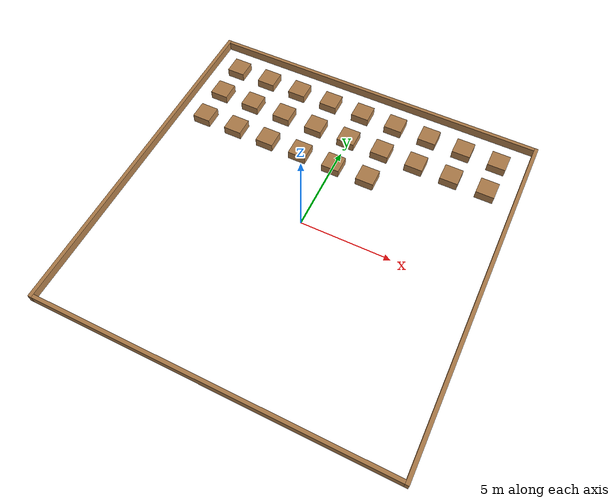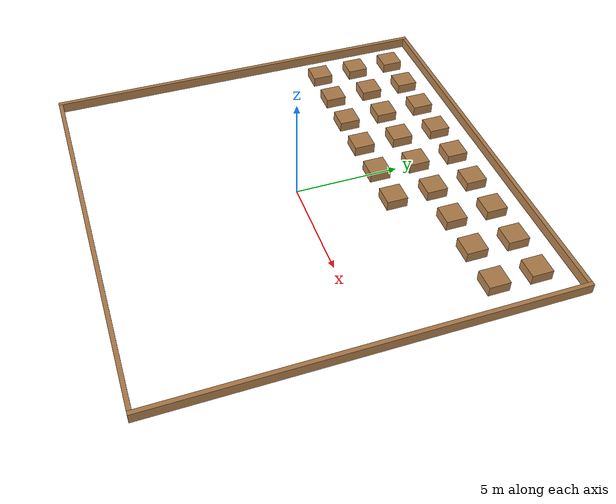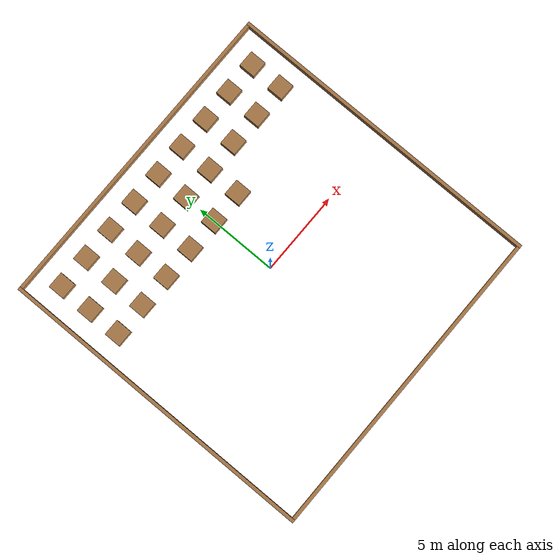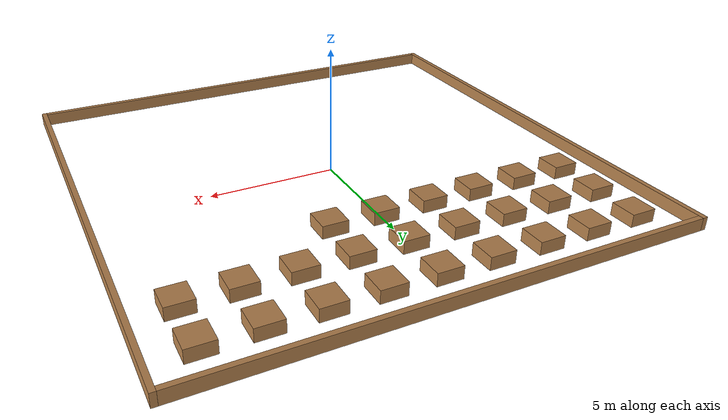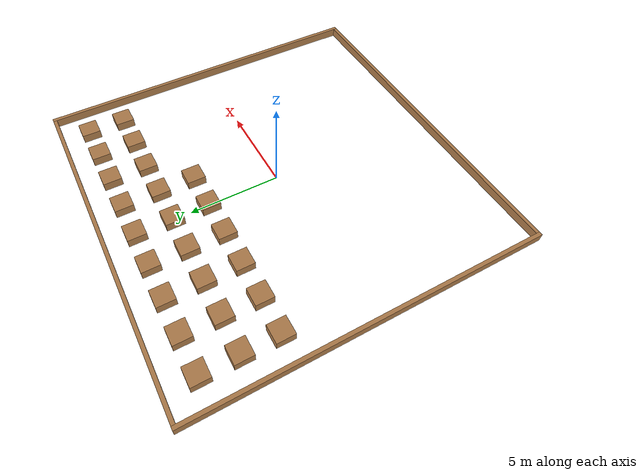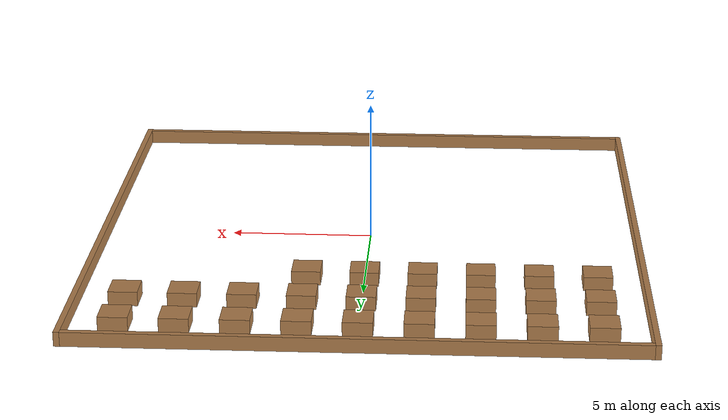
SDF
<sdf version="1.5">
 <model name="clobot_test_map">
  <static>1</static>
  <link name="Wall_EAST">
   <collision name="Wall_EAST_Collision">
    <pose>9.6 0 0.25 0 0 0</pose>
    <geometry><box><size>0.2 19.4 0.5</size></box></geometry>
    <surface>
     <friction>
      <ode><mu>1</mu><mu2>1</mu2><fdir1>0 0 0</fdir1><slip1>0</slip1><slip2>0</slip2></ode>
      <torsional>
       <coefficient>1</coefficient>
       <patch_radius>0</patch_radius>
       <surface_radius>0</surface_radius>
       <use_patch_radius>1</use_patch_radius>
       <ode><slip>0</slip></ode>
      </torsional>
     </friction>
     <bounce><restitution_coefficient>0</restitution_coefficient><threshold>1e+06</threshold></bounce>
     <contact>
      <collide_without_contact>0</collide_without_contact>
      <collide_without_contact_bitmask>1</collide_without_contact_bitmask>
      <collide_bitmask>1</collide_bitmask>
      <ode>
       <soft_cfm>0</soft_cfm>
       <soft_erp>0.2</soft_erp>
       <kp>1e+13</kp>
       <kd>1</kd>
       <max_vel>0.01</max_vel>
       <min_depth>0</min_depth>
      </ode>
      <bullet>
       <split_impulse>1</split_impulse>
       <split_impulse_penetration_threshold>-0.01</split_impulse_penetration_threshold>
       <soft_cfm>0</soft_cfm>
       <soft_erp>0.2</soft_erp>
       <kp>1e+13</kp>
       <kd>1</kd>
      </bullet>
     </contact>
    </surface>
   </collision>
   <visual name="Wall_EAST_Visual">
    <pose>9.6 0 0.25 0 0 0</pose>
    <geometry><box><size>0.2 19.4 0.5</size></box></geometry>
    <material><script><name>Gazebo/WoodFloor</name></script></material>
   </visual>
  </link>
  <link name="Wall_WEST">
   <collision name="Wall_WEST_Collision">
    <pose>-9.6 0 0.25 0 0 0</pose>
    <geometry><box><size>0.2 19.4 0.5</size></box></geometry>
    <surface>
     <friction>
      <ode><mu>1</mu><mu2>1</mu2><fdir1>0 0 0</fdir1><slip1>0</slip1><slip2>0</slip2></ode>
      <torsional>
       <coefficient>1</coefficient>
       <patch_radius>0</patch_radius>
       <surface_radius>0</surface_radius>
       <use_patch_radius>1</use_patch_radius>
       <ode><slip>0</slip></ode>
      </torsional>
     </friction>
     <bounce><restitution_coefficient>0</restitution_coefficient><threshold>1e+06</threshold></bounce>
     <contact>
      <collide_without_contact>0</collide_without_contact>
      <collide_without_contact_bitmask>1</collide_without_contact_bitmask>
      <collide_bitmask>1</collide_bitmask>
      <ode>
       <soft_cfm>0</soft_cfm>
       <soft_erp>0.2</soft_erp>
       <kp>1e+13</kp>
       <kd>1</kd>
       <max_vel>0.01</max_vel>
       <min_depth>0</min_depth>
      </ode>
      <bullet>
       <split_impulse>1</split_impulse>
       <split_impulse_penetration_threshold>-0.01</split_impulse_penetration_threshold>
       <soft_cfm>0</soft_cfm>
       <soft_erp>0.2</soft_erp>
       <kp>1e+13</kp>
       <kd>1</kd>
      </bullet>
     </contact>
    </surface>
   </collision>
   <visual name="Wall_SOUTH_Visual">
    <pose>-9.6 0 0.25 0 0 0</pose>
    <geometry><box><size>0.2 19.4 0.5</size></box></geometry>
    <material><script><name>Gazebo/WoodFloor</name></script></material>
   </visual>
  </link>
  <link name="Wall_SOUTH">
   <collision name="Wall_SOUTH_Collision">
    <pose>0 -9.6 0.25 0 0 0</pose>
    <geometry><box><size>19 0.2 0.5</size></box></geometry>
    <surface>
     <friction>
      <ode><mu>1</mu><mu2>1</mu2><fdir1>0 0 0</fdir1><slip1>0</slip1><slip2>0</slip2></ode>
      <torsional>
       <coefficient>1</coefficient>
       <patch_radius>0</patch_radius>
       <surface_radius>0</surface_radius>
       <use_patch_radius>1</use_patch_radius>
       <ode><slip>0</slip></ode>
      </torsional>
     </friction>
     <bounce><restitution_coefficient>0</restitution_coefficient><threshold>1e+06</threshold></bounce>
     <contact>
      <collide_without_contact>0</collide_without_contact>
      <collide_without_contact_bitmask>1</collide_without_contact_bitmask>
      <collide_bitmask>1</collide_bitmask>
      <ode>
       <soft_cfm>0</soft_cfm>
       <soft_erp>0.2</soft_erp>
       <kp>1e+13</kp>
       <kd>1</kd>
       <max_vel>0.01</max_vel>
       <min_depth>0</min_depth>
      </ode>
      <bullet>
       <split_impulse>1</split_impulse>
       <split_impulse_penetration_threshold>-0.01</split_impulse_penetration_threshold>
       <soft_cfm>0</soft_cfm>
       <soft_erp>0.2</soft_erp>
       <kp>1e+13</kp>
       <kd>1</kd>
      </bullet>
     </contact>
    </surface>
   </collision>
   <visual name="Wall_SOUTH_Visual">
    <pose>0 -9.6 0.25 0 0 0</pose>
    <geometry><box><size>19 0.2 0.5</size></box></geometry>
    <material><script><name>Gazebo/WoodFloor</name></script></material>
   </visual>
  </link>
  <link name="Wall_NORTH">
   <collision name="Wall_NORTH_Collision">
    <pose>0 9.6 0.25 0 0 0</pose>
    <geometry><box><size>19 0.2 0.5</size></box></geometry>
    <surface>
     <friction>
      <ode><mu>1</mu><mu2>1</mu2><fdir1>0 0 0</fdir1><slip1>0</slip1><slip2>0</slip2></ode>
      <torsional>
       <coefficient>1</coefficient>
       <patch_radius>0</patch_radius>
       <surface_radius>0</surface_radius>
       <use_patch_radius>1</use_patch_radius>
       <ode><slip>0</slip></ode>
      </torsional>
     </friction>
     <bounce><restitution_coefficient>0</restitution_coefficient><threshold>1e+06</threshold></bounce>
     <contact>
      <collide_without_contact>0</collide_without_contact>
      <collide_without_contact_bitmask>1</collide_without_contact_bitmask>
      <collide_bitmask>1</collide_bitmask>
      <ode>
       <soft_cfm>0</soft_cfm>
       <soft_erp>0.2</soft_erp>
       <kp>1e+13</kp>
       <kd>1</kd>
       <max_vel>0.01</max_vel>
       <min_depth>0</min_depth>
      </ode>
      <bullet>
       <split_impulse>1</split_impulse>
       <split_impulse_penetration_threshold>-0.01</split_impulse_penetration_threshold>
       <soft_cfm>0</soft_cfm>
       <soft_erp>0.2</soft_erp>
       <kp>1e+13</kp>
       <kd>1</kd>
      </bullet>
     </contact>
    </surface>
   </collision>
   <visual name="Wall_NORTH_Visual">
    <pose>0 9.6 0.25 0 0 0</pose>
    <geometry><box><size>19 0.2 0.5</size></box></geometry>
    <material><script><name>Gazebo/WoodFloor</name></script></material>
   </visual>
  </link>
  <link name="Box1">
   <collision name="Box1_Collision">
    <pose>-8 8 0.25 0 0 0</pose>
    <geometry><box><size>1 1 0.5</size></box></geometry>
    <surface>
     <friction>
      <ode><mu>1</mu><mu2>1</mu2><fdir1>0 0 0</fdir1><slip1>0</slip1><slip2>0</slip2></ode>
      <torsional>
       <coefficient>1</coefficient>
       <patch_radius>0</patch_radius>
       <surface_radius>0</surface_radius>
       <use_patch_radius>1</use_patch_radius>
       <ode><slip>0</slip></ode>
      </torsional>
     </friction>
     <bounce><restitution_coefficient>0</restitution_coefficient><threshold>1e+06</threshold></bounce>
     <contact>
      <collide_without_contact>0</collide_without_contact>
      <collide_without_contact_bitmask>1</collide_without_contact_bitmask>
      <collide_bitmask>1</collide_bitmask>
      <ode>
       <soft_cfm>0</soft_cfm>
       <soft_erp>0.2</soft_erp>
       <kp>1e+13</kp>
       <kd>1</kd>
       <max_vel>0.01</max_vel>
       <min_depth>0</min_depth>
      </ode>
      <bullet>
       <split_impulse>1</split_impulse>
       <split_impulse_penetration_threshold>-0.01</split_impulse_penetration_threshold>
       <soft_cfm>0</soft_cfm>
       <soft_erp>0.2</soft_erp>
       <kp>1e+13</kp>
       <kd>1</kd>
      </bullet>
     </contact>
    </surface>
   </collision>
   <visual name="Box1_Visual">
    <pose>-8 8 0.25 0 0 0</pose>
    <geometry><box><size>1 1 0.5</size></box></geometry>
    <material><script><name>Gazebo/WoodFloor</name></script></material>
   </visual>
  </link>
  <link name="Box2">
   <collision name="Box2_Collision">
    <pose>-6 8 0.25 0 0 0</pose>
    <geometry><box><size>1 1 0.5</size></box></geometry>
    <surface>
     <friction>
      <ode><mu>1</mu><mu2>1</mu2><fdir1>0 0 0</fdir1><slip1>0</slip1><slip2>0</slip2></ode>
      <torsional>
       <coefficient>1</coefficient>
       <patch_radius>0</patch_radius>
       <surface_radius>0</surface_radius>
       <use_patch_radius>1</use_patch_radius>
       <ode><slip>0</slip></ode>
      </torsional>
     </friction>
     <bounce><restitution_coefficient>0</restitution_coefficient><threshold>1e+06</threshold></bounce>
     <contact>
      <collide_without_contact>0</collide_without_contact>
      <collide_without_contact_bitmask>1</collide_without_contact_bitmask>
      <collide_bitmask>1</collide_bitmask>
      <ode>
       <soft_cfm>0</soft_cfm>
       <soft_erp>0.2</soft_erp>
       <kp>1e+13</kp>
       <kd>1</kd>
       <max_vel>0.01</max_vel>
       <min_depth>0</min_depth>
      </ode>
      <bullet>
       <split_impulse>1</split_impulse>
       <split_impulse_penetration_threshold>-0.01</split_impulse_penetration_threshold>
       <soft_cfm>0</soft_cfm>
       <soft_erp>0.2</soft_erp>
       <kp>1e+13</kp>
       <kd>1</kd>
      </bullet>
     </contact>
    </surface>
   </collision>
   <visual name="Box2_Visual">
    <pose>-6 8 0.25 0 0 0</pose>
    <geometry><box><size>1 1 0.5</size></box></geometry>
    <material><script><name>Gazebo/WoodFloor</name></script></material>
   </visual>
  </link>
  <link name="Box3">
   <collision name="Box3_Collision">
    <pose>-4 8 0.25 0 0 0</pose>
    <geometry><box><size>1 1 0.5</size></box></geometry>
    <surface>
     <friction>
      <ode><mu>1</mu><mu2>1</mu2><fdir1>0 0 0</fdir1><slip1>0</slip1><slip2>0</slip2></ode>
      <torsional>
       <coefficient>1</coefficient>
       <patch_radius>0</patch_radius>
       <surface_radius>0</surface_radius>
       <use_patch_radius>1</use_patch_radius>
       <ode><slip>0</slip></ode>
      </torsional>
     </friction>
     <bounce><restitution_coefficient>0</restitution_coefficient><threshold>1e+06</threshold></bounce>
     <contact>
      <collide_without_contact>0</collide_without_contact>
      <collide_without_contact_bitmask>1</collide_without_contact_bitmask>
      <collide_bitmask>1</collide_bitmask>
      <ode>
       <soft_cfm>0</soft_cfm>
       <soft_erp>0.2</soft_erp>
       <kp>1e+13</kp>
       <kd>1</kd>
       <max_vel>0.01</max_vel>
       <min_depth>0</min_depth>
      </ode>
      <bullet>
       <split_impulse>1</split_impulse>
       <split_impulse_penetration_threshold>-0.01</split_impulse_penetration_threshold>
       <soft_cfm>0</soft_cfm>
       <soft_erp>0.2</soft_erp>
       <kp>1e+13</kp>
       <kd>1</kd>
      </bullet>
     </contact>
    </surface>
   </collision>
   <visual name="Box3_Visual">
    <pose>-4 8 0.25 0 0 0</pose>
    <geometry><box><size>1 1 0.5</size></box></geometry>
    <material><script><name>Gazebo/WoodFloor</name></script></material>
   </visual>
  </link>
  <link name="Box4">
   <collision name="Box4_Collision">
    <pose>-2 8 0.25 0 0 0</pose>
    <geometry><box><size>1 1 0.5</size></box></geometry>
    <surface>
     <friction>
      <ode><mu>1</mu><mu2>1</mu2><fdir1>0 0 0</fdir1><slip1>0</slip1><slip2>0</slip2></ode>
      <torsional>
       <coefficient>1</coefficient>
       <patch_radius>0</patch_radius>
       <surface_radius>0</surface_radius>
       <use_patch_radius>1</use_patch_radius>
       <ode><slip>0</slip></ode>
      </torsional>
     </friction>
     <bounce><restitution_coefficient>0</restitution_coefficient><threshold>1e+06</threshold></bounce>
     <contact>
      <collide_without_contact>0</collide_without_contact>
      <collide_without_contact_bitmask>1</collide_without_contact_bitmask>
      <collide_bitmask>1</collide_bitmask>
      <ode>
       <soft_cfm>0</soft_cfm>
       <soft_erp>0.2</soft_erp>
       <kp>1e+13</kp>
       <kd>1</kd>
       <max_vel>0.01</max_vel>
       <min_depth>0</min_depth>
      </ode>
      <bullet>
       <split_impulse>1</split_impulse>
       <split_impulse_penetration_threshold>-0.01</split_impulse_penetration_threshold>
       <soft_cfm>0</soft_cfm>
       <soft_erp>0.2</soft_erp>
       <kp>1e+13</kp>
       <kd>1</kd>
      </bullet>
     </contact>
    </surface>
   </collision>
   <visual name="Box4_Visual">
    <pose>-2 8 0.25 0 0 0</pose>
    <geometry><box><size>1 1 0.5</size></box></geometry>
    <material><script><name>Gazebo/WoodFloor</name></script></material>
   </visual>
  </link>
  <link name="Box5">
   <collision name="Box5_Collision">
    <pose>0 8 0.25 0 0 0</pose>
    <geometry><box><size>1 1 0.5</size></box></geometry>
    <surface>
     <friction>
      <ode><mu>1</mu><mu2>1</mu2><fdir1>0 0 0</fdir1><slip1>0</slip1><slip2>0</slip2></ode>
      <torsional>
       <coefficient>1</coefficient>
       <patch_radius>0</patch_radius>
       <surface_radius>0</surface_radius>
       <use_patch_radius>1</use_patch_radius>
       <ode><slip>0</slip></ode>
      </torsional>
     </friction>
     <bounce><restitution_coefficient>0</restitution_coefficient><threshold>1e+06</threshold></bounce>
     <contact>
      <collide_without_contact>0</collide_without_contact>
      <collide_without_contact_bitmask>1</collide_without_contact_bitmask>
      <collide_bitmask>1</collide_bitmask>
      <ode>
       <soft_cfm>0</soft_cfm>
       <soft_erp>0.2</soft_erp>
       <kp>1e+13</kp>
       <kd>1</kd>
       <max_vel>0.01</max_vel>
       <min_depth>0</min_depth>
      </ode>
      <bullet>
       <split_impulse>1</split_impulse>
       <split_impulse_penetration_threshold>-0.01</split_impulse_penetration_threshold>
       <soft_cfm>0</soft_cfm>
       <soft_erp>0.2</soft_erp>
       <kp>1e+13</kp>
       <kd>1</kd>
      </bullet>
     </contact>
    </surface>
   </collision>
   <visual name="Box5_Visual">
    <pose>0 8 0.25 0 0 0</pose>
    <geometry><box><size>1 1 0.5</size></box></geometry>
    <material><script><name>Gazebo/WoodFloor</name></script></material>
   </visual>
  </link>
  <link name="Box6">
   <collision name="Box6_Collision">
    <pose>2 8 0.25 0 0 0</pose>
    <geometry><box><size>1 1 0.5</size></box></geometry>
    <surface>
     <friction>
      <ode><mu>1</mu><mu2>1</mu2><fdir1>0 0 0</fdir1><slip1>0</slip1><slip2>0</slip2></ode>
      <torsional>
       <coefficient>1</coefficient>
       <patch_radius>0</patch_radius>
       <surface_radius>0</surface_radius>
       <use_patch_radius>1</use_patch_radius>
       <ode><slip>0</slip></ode>
      </torsional>
     </friction>
     <bounce><restitution_coefficient>0</restitution_coefficient><threshold>1e+06</threshold></bounce>
     <contact>
      <collide_without_contact>0</collide_without_contact>
      <collide_without_contact_bitmask>1</collide_without_contact_bitmask>
      <collide_bitmask>1</collide_bitmask>
      <ode>
       <soft_cfm>0</soft_cfm>
       <soft_erp>0.2</soft_erp>
       <kp>1e+13</kp>
       <kd>1</kd>
       <max_vel>0.01</max_vel>
       <min_depth>0</min_depth>
      </ode>
      <bullet>
       <split_impulse>1</split_impulse>
       <split_impulse_penetration_threshold>-0.01</split_impulse_penetration_threshold>
       <soft_cfm>0</soft_cfm>
       <soft_erp>0.2</soft_erp>
       <kp>1e+13</kp>
       <kd>1</kd>
      </bullet>
     </contact>
    </surface>
   </collision>
   <visual name="Box6_Visual">
    <pose>2 8 0.25 0 0 0</pose>
    <geometry><box><size>1 1 0.5</size></box></geometry>
    <material><script><name>Gazebo/WoodFloor</name></script></material>
   </visual>
  </link>
  <link name="Box7">
   <collision name="Box7_Collision">
    <pose>4 8 0.25 0 0 0</pose>
    <geometry><box><size>1 1 0.5</size></box></geometry>
    <surface>
     <friction>
      <ode><mu>1</mu><mu2>1</mu2><fdir1>0 0 0</fdir1><slip1>0</slip1><slip2>0</slip2></ode>
      <torsional>
       <coefficient>1</coefficient>
       <patch_radius>0</patch_radius>
       <surface_radius>0</surface_radius>
       <use_patch_radius>1</use_patch_radius>
       <ode><slip>0</slip></ode>
      </torsional>
     </friction>
     <bounce><restitution_coefficient>0</restitution_coefficient><threshold>1e+06</threshold></bounce>
     <contact>
      <collide_without_contact>0</collide_without_contact>
      <collide_without_contact_bitmask>1</collide_without_contact_bitmask>
      <collide_bitmask>1</collide_bitmask>
      <ode>
       <soft_cfm>0</soft_cfm>
       <soft_erp>0.2</soft_erp>
       <kp>1e+13</kp>
       <kd>1</kd>
       <max_vel>0.01</max_vel>
       <min_depth>0</min_depth>
      </ode>
      <bullet>
       <split_impulse>1</split_impulse>
       <split_impulse_penetration_threshold>-0.01</split_impulse_penetration_threshold>
       <soft_cfm>0</soft_cfm>
       <soft_erp>0.2</soft_erp>
       <kp>1e+13</kp>
       <kd>1</kd>
      </bullet>
     </contact>
    </surface>
   </collision>
   <visual name="Box7_Visual">
    <pose>4 8 0.25 0 0 0</pose>
    <geometry><box><size>1 1 0.5</size></box></geometry>
    <material><script><name>Gazebo/WoodFloor</name></script></material>
   </visual>
  </link>
  <link name="Box8">
   <collision name="Box8_Collision">
    <pose>6 8 0.25 0 0 0</pose>
    <geometry><box><size>1 1 0.5</size></box></geometry>
    <surface>
     <friction>
      <ode><mu>1</mu><mu2>1</mu2><fdir1>0 0 0</fdir1><slip1>0</slip1><slip2>0</slip2></ode>
      <torsional>
       <coefficient>1</coefficient>
       <patch_radius>0</patch_radius>
       <surface_radius>0</surface_radius>
       <use_patch_radius>1</use_patch_radius>
       <ode><slip>0</slip></ode>
      </torsional>
     </friction>
     <bounce><restitution_coefficient>0</restitution_coefficient><threshold>1e+06</threshold></bounce>
     <contact>
      <collide_without_contact>0</collide_without_contact>
      <collide_without_contact_bitmask>1</collide_without_contact_bitmask>
      <collide_bitmask>1</collide_bitmask>
      <ode>
       <soft_cfm>0</soft_cfm>
       <soft_erp>0.2</soft_erp>
       <kp>1e+13</kp>
       <kd>1</kd>
       <max_vel>0.01</max_vel>
       <min_depth>0</min_depth>
      </ode>
      <bullet>
       <split_impulse>1</split_impulse>
       <split_impulse_penetration_threshold>-0.01</split_impulse_penetration_threshold>
       <soft_cfm>0</soft_cfm>
       <soft_erp>0.2</soft_erp>
       <kp>1e+13</kp>
       <kd>1</kd>
      </bullet>
     </contact>
    </surface>
   </collision>
   <visual name="Box8_Visual">
    <pose>6 8 0.25 0 0 0</pose>
    <geometry><box><size>1 1 0.5</size></box></geometry>
    <material><script><name>Gazebo/WoodFloor</name></script></material>
   </visual>
  </link>
  <link name="Box9">
   <collision name="Box9_Collision">
    <pose>8 8 0.25 0 0 0</pose>
    <geometry><box><size>1 1 0.5</size></box></geometry>
    <surface>
     <friction>
      <ode><mu>1</mu><mu2>1</mu2><fdir1>0 0 0</fdir1><slip1>0</slip1><slip2>0</slip2></ode>
      <torsional>
       <coefficient>1</coefficient>
       <patch_radius>0</patch_radius>
       <surface_radius>0</surface_radius>
       <use_patch_radius>1</use_patch_radius>
       <ode><slip>0</slip></ode>
      </torsional>
     </friction>
     <bounce><restitution_coefficient>0</restitution_coefficient><threshold>1e+06</threshold></bounce>
     <contact>
      <collide_without_contact>0</collide_without_contact>
      <collide_without_contact_bitmask>1</collide_without_contact_bitmask>
      <collide_bitmask>1</collide_bitmask>
      <ode>
       <soft_cfm>0</soft_cfm>
       <soft_erp>0.2</soft_erp>
       <kp>1e+13</kp>
       <kd>1</kd>
       <max_vel>0.01</max_vel>
       <min_depth>0</min_depth>
      </ode>
      <bullet>
       <split_impulse>1</split_impulse>
       <split_impulse_penetration_threshold>-0.01</split_impulse_penetration_threshold>
       <soft_cfm>0</soft_cfm>
       <soft_erp>0.2</soft_erp>
       <kp>1e+13</kp>
       <kd>1</kd>
      </bullet>
     </contact>
    </surface>
   </collision>
   <visual name="Box9_Visual">
    <pose>8 8 0.25 0 0 0</pose>
    <geometry><box><size>1 1 0.5</size></box></geometry>
    <material><script><name>Gazebo/WoodFloor</name></script></material>
   </visual>
  </link>
  <link name="Box10">
   <collision name="Box10_Collision">
    <pose>-8 6 0.25 0 0 0</pose>
    <geometry><box><size>1 1 0.5</size></box></geometry>
    <surface>
     <friction>
      <ode><mu>1</mu><mu2>1</mu2><fdir1>0 0 0</fdir1><slip1>0</slip1><slip2>0</slip2></ode>
      <torsional>
       <coefficient>1</coefficient>
       <patch_radius>0</patch_radius>
       <surface_radius>0</surface_radius>
       <use_patch_radius>1</use_patch_radius>
       <ode><slip>0</slip></ode>
      </torsional>
     </friction>
     <bounce><restitution_coefficient>0</restitution_coefficient><threshold>1e+06</threshold></bounce>
     <contact>
      <collide_without_contact>0</collide_without_contact>
      <collide_without_contact_bitmask>1</collide_without_contact_bitmask>
      <collide_bitmask>1</collide_bitmask>
      <ode>
       <soft_cfm>0</soft_cfm>
       <soft_erp>0.2</soft_erp>
       <kp>1e+13</kp>
       <kd>1</kd>
       <max_vel>0.01</max_vel>
       <min_depth>0</min_depth>
      </ode>
      <bullet>
       <split_impulse>1</split_impulse>
       <split_impulse_penetration_threshold>-0.01</split_impulse_penetration_threshold>
       <soft_cfm>0</soft_cfm>
       <soft_erp>0.2</soft_erp>
       <kp>1e+13</kp>
       <kd>1</kd>
      </bullet>
     </contact>
    </surface>
   </collision>
   <visual name="Box10_Visual">
    <pose>-8 6 0.25 0 0 0</pose>
    <geometry><box><size>1 1 0.5</size></box></geometry>
    <material><script><name>Gazebo/WoodFloor</name></script></material>
   </visual>
  </link>
  <link name="Box11">
   <collision name="Box11_Collision">
    <pose>-6 6 0.25 0 0 0</pose>
    <geometry><box><size>1 1 0.5</size></box></geometry>
    <surface>
     <friction>
      <ode><mu>1</mu><mu2>1</mu2><fdir1>0 0 0</fdir1><slip1>0</slip1><slip2>0</slip2></ode>
      <torsional>
       <coefficient>1</coefficient>
       <patch_radius>0</patch_radius>
       <surface_radius>0</surface_radius>
       <use_patch_radius>1</use_patch_radius>
       <ode><slip>0</slip></ode>
      </torsional>
     </friction>
     <bounce><restitution_coefficient>0</restitution_coefficient><threshold>1e+06</threshold></bounce>
     <contact>
      <collide_without_contact>0</collide_without_contact>
      <collide_without_contact_bitmask>1</collide_without_contact_bitmask>
      <collide_bitmask>1</collide_bitmask>
      <ode>
       <soft_cfm>0</soft_cfm>
       <soft_erp>0.2</soft_erp>
       <kp>1e+13</kp>
       <kd>1</kd>
       <max_vel>0.01</max_vel>
       <min_depth>0</min_depth>
      </ode>
      <bullet>
       <split_impulse>1</split_impulse>
       <split_impulse_penetration_threshold>-0.01</split_impulse_penetration_threshold>
       <soft_cfm>0</soft_cfm>
       <soft_erp>0.2</soft_erp>
       <kp>1e+13</kp>
       <kd>1</kd>
      </bullet>
     </contact>
    </surface>
   </collision>
   <visual name="Box11_Visual">
    <pose>-6 6 0.25 0 0 0</pose>
    <geometry><box><size>1 1 0.5</size></box></geometry>
    <material><script><name>Gazebo/WoodFloor</name></script></material>
   </visual>
  </link>
  <link name="Box12">
   <collision name="Box12_Collision">
    <pose>-4 6 0.25 0 0 0</pose>
    <geometry><box><size>1 1 0.5</size></box></geometry>
    <surface>
     <friction>
      <ode><mu>1</mu><mu2>1</mu2><fdir1>0 0 0</fdir1><slip1>0</slip1><slip2>0</slip2></ode>
      <torsional>
       <coefficient>1</coefficient>
       <patch_radius>0</patch_radius>
       <surface_radius>0</surface_radius>
       <use_patch_radius>1</use_patch_radius>
       <ode><slip>0</slip></ode>
      </torsional>
     </friction>
     <bounce><restitution_coefficient>0</restitution_coefficient><threshold>1e+06</threshold></bounce>
     <contact>
      <collide_without_contact>0</collide_without_contact>
      <collide_without_contact_bitmask>1</collide_without_contact_bitmask>
      <collide_bitmask>1</collide_bitmask>
      <ode>
       <soft_cfm>0</soft_cfm>
       <soft_erp>0.2</soft_erp>
       <kp>1e+13</kp>
       <kd>1</kd>
       <max_vel>0.01</max_vel>
       <min_depth>0</min_depth>
      </ode>
      <bullet>
       <split_impulse>1</split_impulse>
       <split_impulse_penetration_threshold>-0.01</split_impulse_penetration_threshold>
       <soft_cfm>0</soft_cfm>
       <soft_erp>0.2</soft_erp>
       <kp>1e+13</kp>
       <kd>1</kd>
      </bullet>
     </contact>
    </surface>
   </collision>
   <visual name="Box12_Visual">
    <pose>-4 6 0.25 0 0 0</pose>
    <geometry><box><size>1 1 0.5</size></box></geometry>
    <material><script><name>Gazebo/WoodFloor</name></script></material>
   </visual>
  </link>
  <link name="Box13">
   <collision name="Box13_Collision">
    <pose>-2 6 0.25 0 0 0</pose>
    <geometry><box><size>1 1 0.5</size></box></geometry>
    <surface>
     <friction>
      <ode><mu>1</mu><mu2>1</mu2><fdir1>0 0 0</fdir1><slip1>0</slip1><slip2>0</slip2></ode>
      <torsional>
       <coefficient>1</coefficient>
       <patch_radius>0</patch_radius>
       <surface_radius>0</surface_radius>
       <use_patch_radius>1</use_patch_radius>
       <ode><slip>0</slip></ode>
      </torsional>
     </friction>
     <bounce><restitution_coefficient>0</restitution_coefficient><threshold>1e+06</threshold></bounce>
     <contact>
      <collide_without_contact>0</collide_without_contact>
      <collide_without_contact_bitmask>1</collide_without_contact_bitmask>
      <collide_bitmask>1</collide_bitmask>
      <ode>
       <soft_cfm>0</soft_cfm>
       <soft_erp>0.2</soft_erp>
       <kp>1e+13</kp>
       <kd>1</kd>
       <max_vel>0.01</max_vel>
       <min_depth>0</min_depth>
      </ode>
      <bullet>
       <split_impulse>1</split_impulse>
       <split_impulse_penetration_threshold>-0.01</split_impulse_penetration_threshold>
       <soft_cfm>0</soft_cfm>
       <soft_erp>0.2</soft_erp>
       <kp>1e+13</kp>
       <kd>1</kd>
      </bullet>
     </contact>
    </surface>
   </collision>
   <visual name="Box13_Visual">
    <pose>-2 6 0.25 0 0 0</pose>
    <geometry><box><size>1 1 0.5</size></box></geometry>
    <material><script><name>Gazebo/WoodFloor</name></script></material>
   </visual>
  </link>
  <link name="Box14">
   <collision name="Box14_Collision">
    <pose>0 6 0.25 0 0 0</pose>
    <geometry><box><size>1 1 0.5</size></box></geometry>
    <surface>
     <friction>
      <ode><mu>1</mu><mu2>1</mu2><fdir1>0 0 0</fdir1><slip1>0</slip1><slip2>0</slip2></ode>
      <torsional>
       <coefficient>1</coefficient>
       <patch_radius>0</patch_radius>
       <surface_radius>0</surface_radius>
       <use_patch_radius>1</use_patch_radius>
       <ode><slip>0</slip></ode>
      </torsional>
     </friction>
     <bounce><restitution_coefficient>0</restitution_coefficient><threshold>1e+06</threshold></bounce>
     <contact>
      <collide_without_contact>0</collide_without_contact>
      <collide_without_contact_bitmask>1</collide_without_contact_bitmask>
      <collide_bitmask>1</collide_bitmask>
      <ode>
       <soft_cfm>0</soft_cfm>
       <soft_erp>0.2</soft_erp>
       <kp>1e+13</kp>
       <kd>1</kd>
       <max_vel>0.01</max_vel>
       <min_depth>0</min_depth>
      </ode>
      <bullet>
       <split_impulse>1</split_impulse>
       <split_impulse_penetration_threshold>-0.01</split_impulse_penetration_threshold>
       <soft_cfm>0</soft_cfm>
       <soft_erp>0.2</soft_erp>
       <kp>1e+13</kp>
       <kd>1</kd>
      </bullet>
     </contact>
    </surface>
   </collision>
   <visual name="Box14_Visual">
    <pose>0 6 0.25 0 0 0</pose>
    <geometry><box><size>1 1 0.5</size></box></geometry>
    <material><script><name>Gazebo/WoodFloor</name></script></material>
   </visual>
  </link>
  <link name="Box15">
   <collision name="Box15_Collision">
    <pose>2 6 0.25 0 0 0</pose>
    <geometry><box><size>1 1 0.5</size></box></geometry>
    <surface>
     <friction>
      <ode><mu>1</mu><mu2>1</mu2><fdir1>0 0 0</fdir1><slip1>0</slip1><slip2>0</slip2></ode>
      <torsional>
       <coefficient>1</coefficient>
       <patch_radius>0</patch_radius>
       <surface_radius>0</surface_radius>
       <use_patch_radius>1</use_patch_radius>
       <ode><slip>0</slip></ode>
      </torsional>
     </friction>
     <bounce><restitution_coefficient>0</restitution_coefficient><threshold>1e+06</threshold></bounce>
     <contact>
      <collide_without_contact>0</collide_without_contact>
      <collide_without_contact_bitmask>1</collide_without_contact_bitmask>
      <collide_bitmask>1</collide_bitmask>
      <ode>
       <soft_cfm>0</soft_cfm>
       <soft_erp>0.2</soft_erp>
       <kp>1e+13</kp>
       <kd>1</kd>
       <max_vel>0.01</max_vel>
       <min_depth>0</min_depth>
      </ode>
      <bullet>
       <split_impulse>1</split_impulse>
       <split_impulse_penetration_threshold>-0.01</split_impulse_penetration_threshold>
       <soft_cfm>0</soft_cfm>
       <soft_erp>0.2</soft_erp>
       <kp>1e+13</kp>
       <kd>1</kd>
      </bullet>
     </contact>
    </surface>
   </collision>
   <visual name="Box15_Visual">
    <pose>2 6 0.25 0 0 0</pose>
    <geometry><box><size>1 1 0.5</size></box></geometry>
    <material><script><name>Gazebo/WoodFloor</name></script></material>
   </visual>
  </link>
  <link name="Box16">
   <collision name="Box16_Collision">
    <pose>4 6 0.25 0 0 0</pose>
    <geometry><box><size>1 1 0.5</size></box></geometry>
    <surface>
     <friction>
      <ode><mu>1</mu><mu2>1</mu2><fdir1>0 0 0</fdir1><slip1>0</slip1><slip2>0</slip2></ode>
      <torsional>
       <coefficient>1</coefficient>
       <patch_radius>0</patch_radius>
       <surface_radius>0</surface_radius>
       <use_patch_radius>1</use_patch_radius>
       <ode><slip>0</slip></ode>
      </torsional>
     </friction>
     <bounce><restitution_coefficient>0</restitution_coefficient><threshold>1e+06</threshold></bounce>
     <contact>
      <collide_without_contact>0</collide_without_contact>
      <collide_without_contact_bitmask>1</collide_without_contact_bitmask>
      <collide_bitmask>1</collide_bitmask>
      <ode>
       <soft_cfm>0</soft_cfm>
       <soft_erp>0.2</soft_erp>
       <kp>1e+13</kp>
       <kd>1</kd>
       <max_vel>0.01</max_vel>
       <min_depth>0</min_depth>
      </ode>
      <bullet>
       <split_impulse>1</split_impulse>
       <split_impulse_penetration_threshold>-0.01</split_impulse_penetration_threshold>
       <soft_cfm>0</soft_cfm>
       <soft_erp>0.2</soft_erp>
       <kp>1e+13</kp>
       <kd>1</kd>
      </bullet>
     </contact>
    </surface>
   </collision>
   <visual name="Box16_Visual">
    <pose>4 6 0.25 0 0 0</pose>
    <geometry><box><size>1 1 0.5</size></box></geometry>
    <material><script><name>Gazebo/WoodFloor</name></script></material>
   </visual>
  </link>
  <link name="Box17">
   <collision name="Box17_Collision">
    <pose>6 6 0.25 0 0 0</pose>
    <geometry><box><size>1 1 0.5</size></box></geometry>
    <surface>
     <friction>
      <ode><mu>1</mu><mu2>1</mu2><fdir1>0 0 0</fdir1><slip1>0</slip1><slip2>0</slip2></ode>
      <torsional>
       <coefficient>1</coefficient>
       <patch_radius>0</patch_radius>
       <surface_radius>0</surface_radius>
       <use_patch_radius>1</use_patch_radius>
       <ode><slip>0</slip></ode>
      </torsional>
     </friction>
     <bounce><restitution_coefficient>0</restitution_coefficient><threshold>1e+06</threshold></bounce>
     <contact>
      <collide_without_contact>0</collide_without_contact>
      <collide_without_contact_bitmask>1</collide_without_contact_bitmask>
      <collide_bitmask>1</collide_bitmask>
      <ode>
       <soft_cfm>0</soft_cfm>
       <soft_erp>0.2</soft_erp>
       <kp>1e+13</kp>
       <kd>1</kd>
       <max_vel>0.01</max_vel>
       <min_depth>0</min_depth>
      </ode>
      <bullet>
       <split_impulse>1</split_impulse>
       <split_impulse_penetration_threshold>-0.01</split_impulse_penetration_threshold>
       <soft_cfm>0</soft_cfm>
       <soft_erp>0.2</soft_erp>
       <kp>1e+13</kp>
       <kd>1</kd>
      </bullet>
     </contact>
    </surface>
   </collision>
   <visual name="Box17_Visual">
    <pose>6 6 0.25 0 0 0</pose>
    <geometry><box><size>1 1 0.5</size></box></geometry>
    <material><script><name>Gazebo/WoodFloor</name></script></material>
   </visual>
  </link>
  <link name="Box18">
   <collision name="Box18_Collision">
    <pose>8 6 0.25 0 0 0</pose>
    <geometry><box><size>1 1 0.5</size></box></geometry>
    <surface>
     <friction>
      <ode><mu>1</mu><mu2>1</mu2><fdir1>0 0 0</fdir1><slip1>0</slip1><slip2>0</slip2></ode>
      <torsional>
       <coefficient>1</coefficient>
       <patch_radius>0</patch_radius>
       <surface_radius>0</surface_radius>
       <use_patch_radius>1</use_patch_radius>
       <ode><slip>0</slip></ode>
      </torsional>
     </friction>
     <bounce><restitution_coefficient>0</restitution_coefficient><threshold>1e+06</threshold></bounce>
     <contact>
      <collide_without_contact>0</collide_without_contact>
      <collide_without_contact_bitmask>1</collide_without_contact_bitmask>
      <collide_bitmask>1</collide_bitmask>
      <ode>
       <soft_cfm>0</soft_cfm>
       <soft_erp>0.2</soft_erp>
       <kp>1e+13</kp>
       <kd>1</kd>
       <max_vel>0.01</max_vel>
       <min_depth>0</min_depth>
      </ode>
      <bullet>
       <split_impulse>1</split_impulse>
       <split_impulse_penetration_threshold>-0.01</split_impulse_penetration_threshold>
       <soft_cfm>0</soft_cfm>
       <soft_erp>0.2</soft_erp>
       <kp>1e+13</kp>
       <kd>1</kd>
      </bullet>
     </contact>
    </surface>
   </collision>
   <visual name="Box18_Visual">
    <pose>8 6 0.25 0 0 0</pose>
    <geometry><box><size>1 1 0.5</size></box></geometry>
    <material><script><name>Gazebo/WoodFloor</name></script></material>
   </visual>
  </link>
  <link name="Box19">
   <collision name="Box19_Collision">
    <pose>-8 4 0.25 0 0 0</pose>
    <geometry><box><size>1 1 0.5</size></box></geometry>
    <surface>
     <friction>
      <ode><mu>1</mu><mu2>1</mu2><fdir1>0 0 0</fdir1><slip1>0</slip1><slip2>0</slip2></ode>
      <torsional>
       <coefficient>1</coefficient>
       <patch_radius>0</patch_radius>
       <surface_radius>0</surface_radius>
       <use_patch_radius>1</use_patch_radius>
       <ode><slip>0</slip></ode>
      </torsional>
     </friction>
     <bounce><restitution_coefficient>0</restitution_coefficient><threshold>1e+06</threshold></bounce>
     <contact>
      <collide_without_contact>0</collide_without_contact>
      <collide_without_contact_bitmask>1</collide_without_contact_bitmask>
      <collide_bitmask>1</collide_bitmask>
      <ode>
       <soft_cfm>0</soft_cfm>
       <soft_erp>0.2</soft_erp>
       <kp>1e+13</kp>
       <kd>1</kd>
       <max_vel>0.01</max_vel>
       <min_depth>0</min_depth>
      </ode>
      <bullet>
       <split_impulse>1</split_impulse>
       <split_impulse_penetration_threshold>-0.01</split_impulse_penetration_threshold>
       <soft_cfm>0</soft_cfm>
       <soft_erp>0.2</soft_erp>
       <kp>1e+13</kp>
       <kd>1</kd>
      </bullet>
     </contact>
    </surface>
   </collision>
   <visual name="Box19_Visual">
    <pose>-8 4 0.25 0 0 0</pose>
    <geometry><box><size>1 1 0.5</size></box></geometry>
    <material><script><name>Gazebo/WoodFloor</name></script></material>
   </visual>
  </link>
  <link name="Box20">
   <collision name="Box20_Collision">
    <pose>-6 4 0.25 0 0 0</pose>
    <geometry><box><size>1 1 0.5</size></box></geometry>
    <surface>
     <friction>
      <ode><mu>1</mu><mu2>1</mu2><fdir1>0 0 0</fdir1><slip1>0</slip1><slip2>0</slip2></ode>
      <torsional>
       <coefficient>1</coefficient>
       <patch_radius>0</patch_radius>
       <surface_radius>0</surface_radius>
       <use_patch_radius>1</use_patch_radius>
       <ode><slip>0</slip></ode>
      </torsional>
     </friction>
     <bounce><restitution_coefficient>0</restitution_coefficient><threshold>1e+06</threshold></bounce>
     <contact>
      <collide_without_contact>0</collide_without_contact>
      <collide_without_contact_bitmask>1</collide_without_contact_bitmask>
      <collide_bitmask>1</collide_bitmask>
      <ode>
       <soft_cfm>0</soft_cfm>
       <soft_erp>0.2</soft_erp>
       <kp>1e+13</kp>
       <kd>1</kd>
       <max_vel>0.01</max_vel>
       <min_depth>0</min_depth>
      </ode>
      <bullet>
       <split_impulse>1</split_impulse>
       <split_impulse_penetration_threshold>-0.01</split_impulse_penetration_threshold>
       <soft_cfm>0</soft_cfm>
       <soft_erp>0.2</soft_erp>
       <kp>1e+13</kp>
       <kd>1</kd>
      </bullet>
     </contact>
    </surface>
   </collision>
   <visual name="Box20_Visual">
    <pose>-6 4 0.25 0 0 0</pose>
    <geometry><box><size>1 1 0.5</size></box></geometry>
    <material><script><name>Gazebo/WoodFloor</name></script></material>
   </visual>
  </link>
  <link name="Box21">
   <collision name="Box21_Collision">
    <pose>-4 4 0.25 0 0 0</pose>
    <geometry><box><size>1 1 0.5</size></box></geometry>
    <surface>
     <friction>
      <ode><mu>1</mu><mu2>1</mu2><fdir1>0 0 0</fdir1><slip1>0</slip1><slip2>0</slip2></ode>
      <torsional>
       <coefficient>1</coefficient>
       <patch_radius>0</patch_radius>
       <surface_radius>0</surface_radius>
       <use_patch_radius>1</use_patch_radius>
       <ode><slip>0</slip></ode>
      </torsional>
     </friction>
     <bounce><restitution_coefficient>0</restitution_coefficient><threshold>1e+06</threshold></bounce>
     <contact>
      <collide_without_contact>0</collide_without_contact>
      <collide_without_contact_bitmask>1</collide_without_contact_bitmask>
      <collide_bitmask>1</collide_bitmask>
      <ode>
       <soft_cfm>0</soft_cfm>
       <soft_erp>0.2</soft_erp>
       <kp>1e+13</kp>
       <kd>1</kd>
       <max_vel>0.01</max_vel>
       <min_depth>0</min_depth>
      </ode>
      <bullet>
       <split_impulse>1</split_impulse>
       <split_impulse_penetration_threshold>-0.01</split_impulse_penetration_threshold>
       <soft_cfm>0</soft_cfm>
       <soft_erp>0.2</soft_erp>
       <kp>1e+13</kp>
       <kd>1</kd>
      </bullet>
     </contact>
    </surface>
   </collision>
   <visual name="Box21_Visual">
    <pose>-4 4 0.25 0 0 0</pose>
    <geometry><box><size>1 1 0.5</size></box></geometry>
    <material><script><name>Gazebo/WoodFloor</name></script></material>
   </visual>
  </link>
  <link name="Box22">
   <collision name="Box22_Collision">
    <pose>-2 4 0.25 0 0 0</pose>
    <geometry><box><size>1 1 0.5</size></box></geometry>
    <surface>
     <friction>
      <ode><mu>1</mu><mu2>1</mu2><fdir1>0 0 0</fdir1><slip1>0</slip1><slip2>0</slip2></ode>
      <torsional>
       <coefficient>1</coefficient>
       <patch_radius>0</patch_radius>
       <surface_radius>0</surface_radius>
       <use_patch_radius>1</use_patch_radius>
       <ode><slip>0</slip></ode>
      </torsional>
     </friction>
     <bounce><restitution_coefficient>0</restitution_coefficient><threshold>1e+06</threshold></bounce>
     <contact>
      <collide_without_contact>0</collide_without_contact>
      <collide_without_contact_bitmask>1</collide_without_contact_bitmask>
      <collide_bitmask>1</collide_bitmask>
      <ode>
       <soft_cfm>0</soft_cfm>
       <soft_erp>0.2</soft_erp>
       <kp>1e+13</kp>
       <kd>1</kd>
       <max_vel>0.01</max_vel>
       <min_depth>0</min_depth>
      </ode>
      <bullet>
       <split_impulse>1</split_impulse>
       <split_impulse_penetration_threshold>-0.01</split_impulse_penetration_threshold>
       <soft_cfm>0</soft_cfm>
       <soft_erp>0.2</soft_erp>
       <kp>1e+13</kp>
       <kd>1</kd>
      </bullet>
     </contact>
    </surface>
   </collision>
   <visual name="Box22_Visual">
    <pose>-2 4 0.25 0 0 0</pose>
    <geometry><box><size>1 1 0.5</size></box></geometry>
    <material><script><name>Gazebo/WoodFloor</name></script></material>
   </visual>
  </link>
  <link name="Box23">
   <collision name="Box23_Collision">
    <pose>0 4 0.25 0 0 0</pose>
    <geometry><box><size>1 1 0.5</size></box></geometry>
    <surface>
     <friction>
      <ode><mu>1</mu><mu2>1</mu2><fdir1>0 0 0</fdir1><slip1>0</slip1><slip2>0</slip2></ode>
      <torsional>
       <coefficient>1</coefficient>
       <patch_radius>0</patch_radius>
       <surface_radius>0</surface_radius>
       <use_patch_radius>1</use_patch_radius>
       <ode><slip>0</slip></ode>
      </torsional>
     </friction>
     <bounce><restitution_coefficient>0</restitution_coefficient><threshold>1e+06</threshold></bounce>
     <contact>
      <collide_without_contact>0</collide_without_contact>
      <collide_without_contact_bitmask>1</collide_without_contact_bitmask>
      <collide_bitmask>1</collide_bitmask>
      <ode>
       <soft_cfm>0</soft_cfm>
       <soft_erp>0.2</soft_erp>
       <kp>1e+13</kp>
       <kd>1</kd>
       <max_vel>0.01</max_vel>
       <min_depth>0</min_depth>
      </ode>
      <bullet>
       <split_impulse>1</split_impulse>
       <split_impulse_penetration_threshold>-0.01</split_impulse_penetration_threshold>
       <soft_cfm>0</soft_cfm>
       <soft_erp>0.2</soft_erp>
       <kp>1e+13</kp>
       <kd>1</kd>
      </bullet>
     </contact>
    </surface>
   </collision>
   <visual name="Box23_Visual">
    <pose>0 4 0.25 0 0 0</pose>
    <geometry><box><size>1 1 0.5</size></box></geometry>
    <material><script><name>Gazebo/WoodFloor</name></script></material>
   </visual>
  </link>
  <link name="Box24">
   <collision name="Box24_Collision">
    <pose>2 4 0.25 0 0 0</pose>
    <geometry><box><size>1 1 0.5</size></box></geometry>
    <surface>
     <friction>
      <ode><mu>1</mu><mu2>1</mu2><fdir1>0 0 0</fdir1><slip1>0</slip1><slip2>0</slip2></ode>
      <torsional>
       <coefficient>1</coefficient>
       <patch_radius>0</patch_radius>
       <surface_radius>0</surface_radius>
       <use_patch_radius>1</use_patch_radius>
       <ode><slip>0</slip></ode>
      </torsional>
     </friction>
     <bounce><restitution_coefficient>0</restitution_coefficient><threshold>1e+06</threshold></bounce>
     <contact>
      <collide_without_contact>0</collide_without_contact>
      <collide_without_contact_bitmask>1</collide_without_contact_bitmask>
      <collide_bitmask>1</collide_bitmask>
      <ode>
       <soft_cfm>0</soft_cfm>
       <soft_erp>0.2</soft_erp>
       <kp>1e+13</kp>
       <kd>1</kd>
       <max_vel>0.01</max_vel>
       <min_depth>0</min_depth>
      </ode>
      <bullet>
       <split_impulse>1</split_impulse>
       <split_impulse_penetration_threshold>-0.01</split_impulse_penetration_threshold>
       <soft_cfm>0</soft_cfm>
       <soft_erp>0.2</soft_erp>
       <kp>1e+13</kp>
       <kd>1</kd>
      </bullet>
     </contact>
    </surface>
   </collision>
   <visual name="Box24_Visual">
    <pose>2 4 0.25 0 0 0</pose>
    <geometry><box><size>1 1 0.5</size></box></geometry>
    <material><script><name>Gazebo/WoodFloor</name></script></material>
   </visual>
  </link>
 </model>
</sdf>
